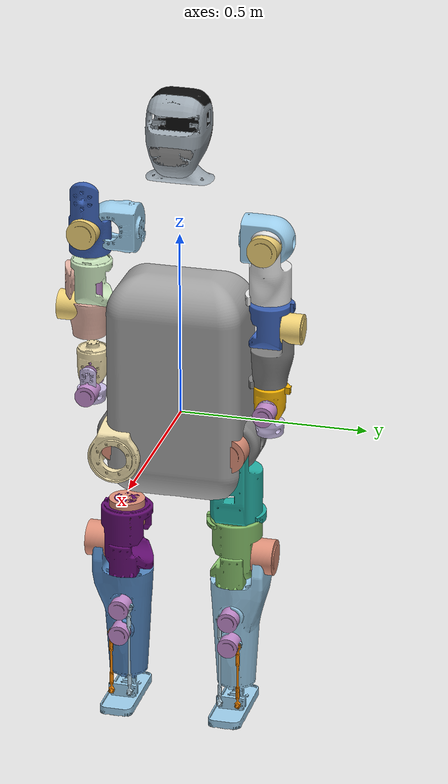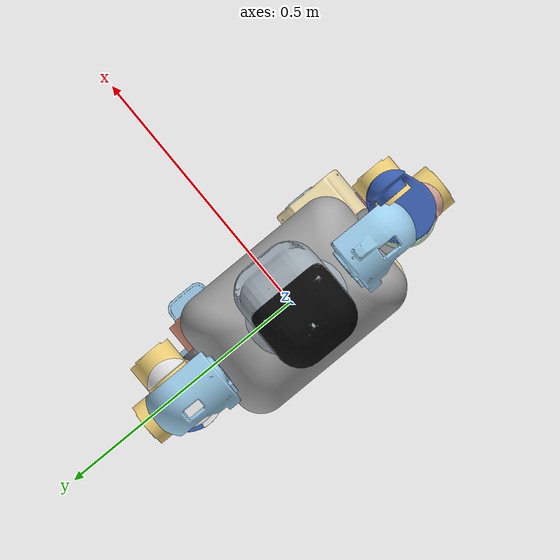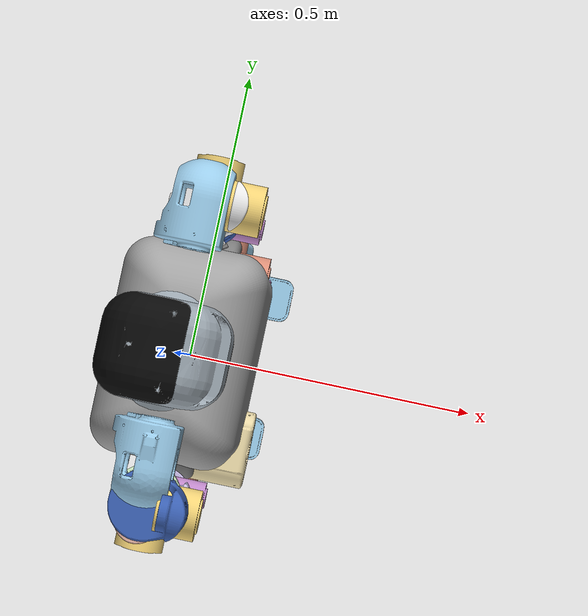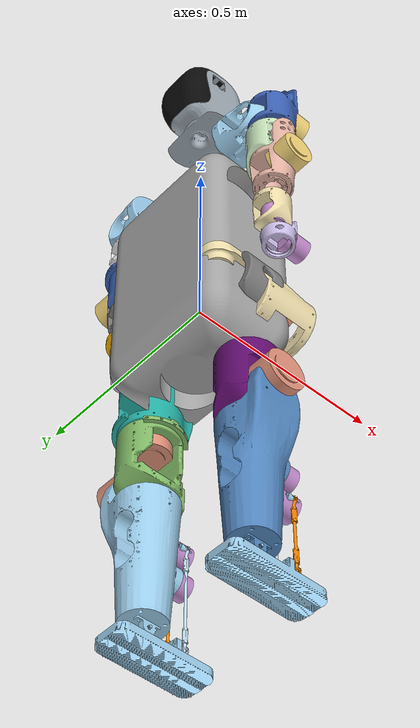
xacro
<?xml version="1.0"?>
<robot xmlns:xacro="http://ros.org/wiki/xacro" name="full_robot_description">

    <!-- Actuator properties macros -->
    <xacro:include filename="$(find full_robot_description)/urdf/macros/actuator_properties.xacro" />

    <!-- Body (base + torso) -->
    <xacro:include filename="$(find full_robot_description)/urdf/links/body_links.xacro" />
    <xacro:include filename="$(find full_robot_description)/urdf/joints/body_joints.xacro" />

    <!-- Left Arm -->
    <xacro:include filename="$(find full_robot_description)/urdf/links/left_arm_links.xacro" />
    <xacro:include filename="$(find full_robot_description)/urdf/joints/left_arm_joints.xacro" />

    <!-- Right Arm -->
    <xacro:include filename="$(find full_robot_description)/urdf/links/right_arm_links.xacro" />
    <xacro:include filename="$(find full_robot_description)/urdf/joints/right_arm_joints.xacro" />

    <!-- Left Foot -->
    <xacro:include filename="$(find full_robot_description)/urdf/links/left_foot_links.xacro" />
    <xacro:include filename="$(find full_robot_description)/urdf/joints/left_foot_joints.xacro" />

    <!-- Right Foot -->
    <xacro:include filename="$(find full_robot_description)/urdf/links/right_foot_links.xacro" />
    <xacro:include filename="$(find full_robot_description)/urdf/joints/right_foot_joints.xacro" />

    <!-- Temporarily disable inspire hands to speed up simulation and avoid issues with the hand meshes. Will be re-enabled once the hand meshes are optimized for simulation. -->
    <!-- Hands -->
    <!--xacro:include filename="$(find hand_description)/urdf/hands/inspire_hand_right.xacro" /-->

    <!-- Fix robot base to world frame -->
    <link name="world"/>
    <joint name="world_joint" type="fixed">
        <parent link="world"/>
        <child link="urdf_base"/>
    </joint>

</robot>

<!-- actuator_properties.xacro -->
<robot xmlns:xacro="http://www.ros.org/wiki/xacro">

  <!-- ==================== X4-36 (direct) ==================== -->
  <xacro:property name="X4_rated_effort"      value="10.5" />
  <xacro:property name="X4_moderate_effort"    value="12.075" />
  <xacro:property name="X4_peak_effort"        value="34" />
  <xacro:property name="X4_rated_velocity"     value="8.69" />
  <xacro:property name="X4_noload_velocity"    value="11.62" />
  <xacro:property name="X4_friction"           value="1.14" />
  <xacro:property name="X4_damping"            value="0.114" />
  <!-- Rotor inertia: 0.3 Kg·cm² = 3.0e-6 kg·m², gear ratio 36:1
       Reflected inertia = I_rotor × N² = 3.0e-6 × 1296 = 0.00389 kg·m² -->
  <xacro:property name="X4_rotor_inertia"      value="0.00389" />

  <!-- ==================== X6-60 (direct) ==================== -->
  <xacro:property name="X6_rated_effort"       value="20" />
  <xacro:property name="X6_moderate_effort"    value="23" />
  <xacro:property name="X6_peak_effort"        value="60" />
  <xacro:property name="X6_rated_velocity"     value="16.02" />
  <xacro:property name="X6_noload_velocity"    value="18.43" />
  <xacro:property name="X6_friction"           value="1.6" />
  <xacro:property name="X6_damping"            value="0.16" />
  <!-- Rotor inertia: 0.66 Kg·cm² = 6.6e-6 kg·m², gear ratio 19.612:1
       Reflected inertia = I_rotor × N² = 6.6e-6 × 384.6 = 0.00254 kg·m² -->
  <xacro:property name="X6_rotor_inertia"      value="0.00254" />

  <!-- ==================== X8-120 (direct) ==================== -->
  <xacro:property name="X8_rated_effort"       value="43" />
  <!-- X8 moderate set to 60% peak (72 Nm) for hip roll:
       cyclic gait duty ~30-50% keeps thermal average near rated,
       allowing sustained walking ~15-30 min without overheating -->
  <xacro:property name="X8_moderate_effort"    value="72" />
  <xacro:property name="X8_peak_effort"        value="120" />
  <xacro:property name="X8_rated_velocity"     value="13.3" />
  <xacro:property name="X8_noload_velocity"    value="16.54" />
  <xacro:property name="X8_friction"           value="3.21" />
  <xacro:property name="X8_damping"            value="0.321" />
  <!-- Rotor inertia: 1.5 Kg·cm² = 1.5e-5 kg·m², gear ratio 19.612:1
       Reflected inertia = I_rotor × N² = 1.5e-5 × 384.6 = 0.00577 kg·m² -->
  <xacro:property name="X8_rotor_inertia"      value="0.00577" />

  <!-- Ankle Pitch (both motors same direction, lever arm = 100mm)
       τ = 2 × (τ_motor / r_exc) × d_pitch = 2 × (τ / 0.025) × 0.1 -->
  <xacro:property name="ankle_pitch_rated_effort"     value="84" />
  <xacro:property name="ankle_pitch_moderate_effort"   value="96.6" />
  <xacro:property name="ankle_pitch_peak_effort"       value="272" />
  <xacro:property name="ankle_pitch_rated_velocity"    value="2.17" />

  <!-- Ankle Roll (motors opposite direction, lever arm = 30mm)
       τ = 2 × (τ_motor / r_exc) × d_roll = 2 × (τ / 0.025) × 0.03 -->
  <xacro:property name="ankle_roll_rated_effort"      value="25.2" />
  <xacro:property name="ankle_roll_moderate_effort"    value="28.98" />
  <xacro:property name="ankle_roll_peak_effort"        value="81.6" />
  <xacro:property name="ankle_roll_rated_velocity"     value="7.24" />

</robot>

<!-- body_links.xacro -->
<robot xmlns:xacro="http://www.ros.org/wiki/xacro">

  <!-- Body                                                              -->
  <link name="urdf_base">
    <inertial>
      <origin xyz="-0.0018527 0.000221695 -0.0329862" rpy="0 0 0"/>
      <mass value="5.778"/>
      <inertia ixx="0.0319377" ixy="1.97277e-06" ixz="3.91267e-05" iyy="0.0280522" iyz="-4.94971e-07" izz="0.0192445"/>
    </inertial>
    <visual>
      <origin xyz="-0.00371302 0.000225649 -0.0675455" rpy="0 0 -1.5708"/>
      <geometry>
        <mesh filename="package://full_robot_description/meshes/visual/urdf_base.stl"/>
      </geometry>
      <material name="urdf_base_material">
        <color rgba="0.231373 0.380392 0.705882 1"/>
      </material>
    </visual>
    <collision>
      <origin xyz="-0.00371302 0.000225649 -0.0675455" rpy="0 0 -1.5708"/>
      <geometry>
        <mesh filename="package://full_robot_description/meshes/collision/urdf_base.stl"/>
      </geometry>
    </collision>
  </link>

  <link name="urdf_simplified_torso">
    <inertial>
      <origin xyz="0.00243309 2.02127e-05 0.351351" rpy="0 0 0"/>
      <mass value="7.625"/>
      <inertia ixx="0.438279" ixy="-8.9594e-06" ixz="-0.00685147" iyy="0.409694" iyz="-2.41742e-05" izz="0.088742"/>
    </inertial>
    <visual>
      <origin xyz="3.1635e-07 0 0.672475" rpy="0 0 -1.5708"/>
      <geometry>
        <mesh filename="package://full_robot_description/meshes/visual/back_access.stl"/>
      </geometry>
      <material name="back_access_material">
        <color rgba="0.0392157 0.0392157 0.0392157 1"/>
      </material>
    </visual>
    <visual>
      <origin xyz="0 0 0.6725" rpy="0 0 -1.5708"/>
      <geometry>
        <mesh filename="package://full_robot_description/meshes/visual/head.stl"/>
      </geometry>
      <material name="head_material">
        <color rgba="0.623529 0.666667 0.701961 1"/>
      </material>
    </visual>
    <collision>
      <origin xyz="0 0 0.6725" rpy="0 0 -1.5708"/>
      <geometry>
        <mesh filename="package://full_robot_description/meshes/collision/head.stl"/>
      </geometry>
    </collision>
    <visual>
      <origin xyz="0 0 0.6725" rpy="0 0 -1.5708"/>
      <geometry>
        <mesh filename="package://full_robot_description/meshes/visual/intake.stl"/>
      </geometry>
      <material name="intake_material">
        <color rgba="0.6 0.6 0.6 1"/>
      </material>
    </visual>
    <collision>
      <origin xyz="0 0 0.6725" rpy="0 0 -1.5708"/>
      <geometry>
        <mesh filename="package://full_robot_description/meshes/collision/intake.stl"/>
      </geometry>
    </collision>
    <visual>
      <origin xyz="0 0 0" rpy="0 0 -1.5708"/>
      <geometry>
        <mesh filename="package://full_robot_description/meshes/visual/urdf_simplified_torso.stl"/>
      </geometry>
      <material name="urdf_simplified_torso_material">
        <color rgba="0.647059 0.647059 0.647059 1"/>
      </material>
    </visual>
    <collision>
      <origin xyz="0 0 0" rpy="0 0 -1.5708"/>
      <geometry>
        <mesh filename="package://full_robot_description/meshes/collision/urdf_simplified_torso.stl"/>
      </geometry>
    </collision>
  </link>

</robot>

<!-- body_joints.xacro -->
<robot xmlns:xacro="http://www.ros.org/wiki/xacro">

  <!-- Leg joint type — set fixed_legs:=true to lock leg joints          -->
  <xacro:arg name="fixed_legs" default="false"/>
  <xacro:property name="leg_joint_type" value="${'fixed' if '$(arg fixed_legs)' == 'true' else 'revolute'}"/>

  <!-- Waist joint type — independent from the arm and leg configuration -->
  <xacro:arg name="fixed_waist" default="true"/>
  <xacro:property name="waist_joint_type" value="${'fixed' if '$(arg fixed_waist)' == 'true' else 'revolute'}"/>

  <!-- Body                                                              -->
  <joint name="waist_yaw_joint_X8" type="${waist_joint_type}">
    <origin xyz="-0.00371302 0.000225649 0.0824545" rpy="0 0 0"/>
    <parent link="urdf_base"/>
    <child link="urdf_simplified_torso"/>
    <axis xyz="0 0 1"/>
    <limit effort="${X8_moderate_effort}" velocity="${X8_rated_velocity}" lower="-2.60054" upper="2.60054"/>
    <dynamics damping="${X8_damping}" friction="${X8_friction}"/>
  </joint>

</robot>

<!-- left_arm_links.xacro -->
<robot xmlns:xacro="http://www.ros.org/wiki/xacro">

  <!-- Left Arm                                                          -->
  <link name="urdf_l_shoulder_assembly">
    <inertial>
      <origin xyz="-0.00413417 0.0631966 -4.09838e-05" rpy="0 0 0"/>
      <mass value="1.246"/>
      <inertia ixx="0.00206364" ixy="-3.5558e-05" ixz="-1.48706e-06" iyy="0.00152408" iyz="-3.32984e-06" izz="0.00171114"/>
    </inertial>
    <visual>
      <origin xyz="0 -0.008 0" rpy="0 0 -1.5708"/>
      <geometry>
        <mesh filename="package://full_robot_description/meshes/visual/l_shoulder.stl"/>
      </geometry>
      <material name="l_shoulder_material">
        <color rgba="0.615686 0.811765 0.929412 1"/>
      </material>
    </visual>
    <collision>
      <origin xyz="0 -0.008 0" rpy="0 0 -1.5708"/>
      <geometry>
        <mesh filename="package://full_robot_description/meshes/collision/l_shoulder.stl"/>
      </geometry>
    </collision>
    <visual>
      <origin xyz="0.029 0.07 7.69541e-08" rpy="-1.57079 0 -1.5708"/>
      <geometry>
        <mesh filename="package://full_robot_description/meshes/visual/stator_x6_p20_60_unified.stl"/>
      </geometry>
      <material name="stator_x6_p20_60_unified_material">
        <color rgba="0.960784 0.835294 0.470588 1"/>
      </material>
    </visual>
  </link>

  <link name="urdf_l_upper_arm_assembly">
    <inertial>
      <origin xyz="-0.0354438 -0.000631042 -0.105506" rpy="0 0 0"/>
      <mass value="0.802"/>
      <inertia ixx="0.00190836" ixy="-1.03026e-05" ixz="-0.000475779" iyy="0.00206427" iyz="-2.68663e-05" izz="0.00104318"/>
    </inertial>
    <visual>
      <origin xyz="-0.017 0 0" rpy="0 0 -1.5708"/>
      <geometry>
        <mesh filename="package://full_robot_description/meshes/visual/urdf_l_upper_arm_simplified.stl"/>
      </geometry>
      <material name="urdf_l_upper_arm_simplified_material">
        <color rgba="0.917647 0.917647 0.917647 1"/>
      </material>
    </visual>
    <collision>
      <origin xyz="-0.017 0 0" rpy="0 0 -1.5708"/>
      <geometry>
        <mesh filename="package://full_robot_description/meshes/collision/urdf_l_upper_arm_simplified.stl"/>
      </geometry>
    </collision>
    <visual>
      <origin xyz="-0.046 5.58327e-07 -0.152" rpy="3.14159 0 3.14159"/>
      <geometry>
        <mesh filename="package://full_robot_description/meshes/visual/stator_x4_p36_36_unified.stl"/>
      </geometry>
      <material name="stator_x4_p36_36_unified_material">
        <color rgba="0.764706 0.545098 0.803922 1"/>
      </material>
    </visual>
  </link>

  <link name="urdf_l_elbow_assembly">
    <inertial>
      <origin xyz="-0.000321525 -0.00786654 -0.0707457" rpy="0 0 0"/>
      <mass value="1.142"/>
      <inertia ixx="0.00149508" ixy="1.15495e-05" ixz="1.86187e-05" iyy="0.00161681" iyz="-8.7759e-05" izz="0.00119839"/>
    </inertial>
    <visual>
      <origin xyz="8.44837e-08 0.023 -0.075" rpy="-1.5708 0 0"/>
      <geometry>
        <mesh filename="package://full_robot_description/meshes/visual/stator_x6_p20_60_unified.stl"/>
      </geometry>
      <material name="stator_x6_p20_60_unified_2_material">
        <color rgba="0.960784 0.835294 0.470588 1"/>
      </material>
    </visual>
    <visual>
      <origin xyz="0 0 0.008" rpy="0 0 0"/>
      <geometry>
        <mesh filename="package://full_robot_description/meshes/visual/urdf_l_elbow_simplified.stl"/>
      </geometry>
      <material name="urdf_l_elbow_simplified_material">
        <color rgba="0.231373 0.380392 0.705882 1"/>
      </material>
    </visual>
    <collision>
      <origin xyz="0 0 0.008" rpy="0 0 0"/>
      <geometry>
        <mesh filename="package://full_robot_description/meshes/collision/urdf_l_elbow_simplified.stl"/>
      </geometry>
    </collision>
  </link>

  <link name="urdf_l_upper_forearm_assembly">
    <inertial>
      <origin xyz="0.00203128 -0.0282785 -0.102443" rpy="0 0 0"/>
      <mass value="0.75"/>
      <inertia ixx="0.00185473" ixy="6.4337e-06" ixz="4.61364e-06" iyy="0.00160857" iyz="-0.000406067" izz="0.000790533"/>
    </inertial>
    <visual>
      <origin xyz="0 -0.012 0" rpy="0 0 -1.5708"/>
      <geometry>
        <mesh filename="package://full_robot_description/meshes/visual/urdf_l_upper_forearm_simplified.stl"/>
      </geometry>
      <material name="urdf_l_upper_forearm_simplified_material">
        <color rgba="0.498039 0.498039 0.498039 1"/>
      </material>
    </visual>
    <collision>
      <origin xyz="0 -0.012 0" rpy="0 0 -1.5708"/>
      <geometry>
        <mesh filename="package://full_robot_description/meshes/collision/urdf_l_upper_forearm_simplified.stl"/>
      </geometry>
    </collision>
    <visual>
      <origin xyz="4.00688e-07 -0.035 -0.151" rpy="-3.14159 0 -1.5708"/>
      <geometry>
        <mesh filename="package://full_robot_description/meshes/visual/stator_x4_p36_36_unified.stl"/>
      </geometry>
      <material name="stator_x4_p36_36_unified_2_material">
        <color rgba="0.764706 0.545098 0.803922 1"/>
      </material>
    </visual>
  </link>

  <link name="urdf_l_lower_forearm_assembly">
    <inertial>
      <origin xyz="-0.00486856 0.000580772 -0.0531095" rpy="0 0 0"/>
      <mass value="0.556"/>
      <inertia ixx="0.000515298" ixy="3.39246e-06" ixz="-1.98439e-05" iyy="0.00052029" iyz="-1.31438e-05" izz="0.000383432"/>
    </inertial>
    <visual>
      <origin xyz="0 0 0.012" rpy="0 0 1.57079"/>
      <geometry>
        <mesh filename="package://full_robot_description/meshes/visual/urdf_l_lower_forearm_simplified.stl"/>
      </geometry>
      <material name="urdf_l_lower_forearm_simplified_material">
        <color rgba="0.980392 0.713725 0.00392157 1"/>
      </material>
    </visual>
    <collision>
      <origin xyz="0 0 0.012" rpy="0 0 1.57079"/>
      <geometry>
        <mesh filename="package://full_robot_description/meshes/collision/urdf_l_lower_forearm_simplified.stl"/>
      </geometry>
    </collision>
    <visual>
      <origin xyz="0.0235 -2.35e-07 -0.0615" rpy="1.5708 0 1.57079"/>
      <geometry>
        <mesh filename="package://full_robot_description/meshes/visual/stator_x4_p36_36_unified.stl"/>
      </geometry>
      <material name="stator_x4_p36_36_unified_3_material">
        <color rgba="0.764706 0.545098 0.803922 1"/>
      </material>
    </visual>
  </link>

  <link name="urdf_l_wrist_assembly">
    <inertial>
      <origin xyz="-0.0290507 1.13212e-06 -0.121112" rpy="0 0 0"/>
      <mass value="0.638"/>
      <inertia ixx="0.00213609" ixy="-7.00887e-09" ixz="-3.51538e-05" iyy="0.00236601" iyz="-1.94664e-08" izz="0.000415509"/>
    </inertial>
    <visual>
      <origin xyz="-0.01 0 0" rpy="0 0 -1.5708"/>
      <geometry>
        <mesh filename="package://full_robot_description/meshes/visual/l_wrist.stl"/>
      </geometry>
      <material name="l_wrist_material">
        <color rgba="0.8 0.74902 0.913725 1"/>
      </material>
    </visual>
    <collision>
      <origin xyz="-0.01 0 0" rpy="0 0 -1.5708"/>
      <geometry>
        <mesh filename="package://full_robot_description/meshes/collision/l_wrist.stl"/>
      </geometry>
    </collision>
  </link>

</robot>

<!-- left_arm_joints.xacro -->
<robot xmlns:xacro="http://www.ros.org/wiki/xacro">

  <!-- Left Arm                                                          -->
  <joint name="left_shoulder_pitch_joint_X6" type="revolute">
    <origin xyz="0 0.1695 0.423977" rpy="0 0 0"/>
    <parent link="urdf_simplified_torso"/>
    <child link="urdf_l_shoulder_assembly"/>
    <axis xyz="0 1 0"/>
    <limit effort="${X6_moderate_effort}" velocity="${X6_rated_velocity}" lower="-3.14159" upper="1.5708"/>
    <dynamics damping="${X6_damping}" friction="${X6_friction}"/>
  </joint>

  <joint name="left_shoulder_roll_joint_X6" type="revolute">
    <origin xyz="0.046 0.07 1.22065e-07" rpy="0 0 0"/>
    <parent link="urdf_l_shoulder_assembly"/>
    <child link="urdf_l_upper_arm_assembly"/>
    <axis xyz="1 0 0"/>
    <limit effort="${X6_moderate_effort}" velocity="${X6_rated_velocity}" lower="0" upper="3.14159"/>
    <dynamics damping="${X6_damping}" friction="${X6_friction}"/>
  </joint>

  <joint name="left_shoulder_yaw_joint_X4" type="revolute">
    <origin xyz="-0.046 6.06079e-07 -0.165" rpy="0 0 0"/>
    <parent link="urdf_l_upper_arm_assembly"/>
    <child link="urdf_l_elbow_assembly"/>
    <axis xyz="0 0 1"/>
    <limit effort="${X4_moderate_effort}" velocity="${X4_rated_velocity}" lower="-2.35619" upper="2.35619"/>
    <dynamics damping="${X4_damping}" friction="${X4_friction}"/>
  </joint>

  <joint name="left_elbow_pitch_joint_X6" type="revolute">
    <origin xyz="1.28562e-07 0.035 -0.075" rpy="0 0 0"/>
    <parent link="urdf_l_elbow_assembly"/>
    <child link="urdf_l_upper_forearm_assembly"/>
    <axis xyz="0 1 0"/>
    <limit effort="${X6_moderate_effort}" velocity="${X6_rated_velocity}" lower="-1.5708" upper="1.5708"/>
    <dynamics damping="${X6_damping}" friction="${X6_friction}"/>
  </joint>

  <joint name="left_wrist_yaw_joint_X4" type="revolute">
    <origin xyz="4.32531e-07 -0.035 -0.163" rpy="0 0 0"/>
    <parent link="urdf_l_upper_forearm_assembly"/>
    <child link="urdf_l_lower_forearm_assembly"/>
    <axis xyz="0 0 1"/>
    <limit effort="${X4_moderate_effort}" velocity="${X4_rated_velocity}" lower="-2.35619" upper="2.35619"/>
    <dynamics damping="${X4_damping}" friction="${X4_friction}"/>
  </joint>

  <joint name="left_wrist_roll_joint_X4" type="revolute">
    <origin xyz="0.033 -3.3e-07 -0.0615" rpy="0 0 0"/>
    <parent link="urdf_l_lower_forearm_assembly"/>
    <child link="urdf_l_wrist_assembly"/>
    <axis xyz="1 0 0"/>
    <limit effort="${X4_moderate_effort}" velocity="${X4_rated_velocity}" lower="-1.5708" upper="1.5708"/>
    <dynamics damping="${X4_damping}" friction="${X4_friction}"/>
  </joint>

</robot>

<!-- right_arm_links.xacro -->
<robot xmlns:xacro="http://www.ros.org/wiki/xacro">

  <!-- Right Arm                                                         -->
  <link name="urdf_r_shoulder_assembly">
    <inertial>
      <origin xyz="-0.0041383 -0.0631521 -4.41523e-05" rpy="0 0 0"/>
      <mass value="1.246"/>
      <inertia ixx="0.00207139" ixy="3.51054e-05" ixz="-1.60928e-06" iyy="0.00153235" iyz="3.59139e-06" izz="0.00170662"/>
    </inertial>
    <visual>
      <origin xyz="0.029 -0.07 7.69541e-08" rpy="-1.57079 0 -1.5708"/>
      <geometry>
        <mesh filename="package://full_robot_description/meshes/visual/stator_x6_p20_60_unified.stl"/>
      </geometry>
      <material name="stator_x6_p20_60_unified_3_material">
        <color rgba="0.960784 0.835294 0.470588 1"/>
      </material>
    </visual>
    <visual>
      <origin xyz="0 0.008 0" rpy="0 0 -1.5708"/>
      <geometry>
        <mesh filename="package://full_robot_description/meshes/visual/r_shoulder.stl"/>
      </geometry>
      <material name="r_shoulder_material">
        <color rgba="0.615686 0.811765 0.929412 1"/>
      </material>
    </visual>
    <collision>
      <origin xyz="0 0.008 0" rpy="0 0 -1.5708"/>
      <geometry>
        <mesh filename="package://full_robot_description/meshes/collision/r_shoulder.stl"/>
      </geometry>
    </collision>
  </link>

  <link name="urdf_r_upper_arm_assembly">
    <inertial>
      <origin xyz="-0.0347331 3.91738e-07 -0.104084" rpy="0 0 0"/>
      <mass value="0.802"/>
      <inertia ixx="0.00188605" ixy="2.8797e-09" ixz="-0.000468447" iyy="0.00204755" iyz="4.48483e-09" izz="0.0010158"/>
    </inertial>
    <visual>
      <origin xyz="-0.046 5.58327e-07 -0.152" rpy="3.14159 0 -1.5708"/>
      <geometry>
        <mesh filename="package://full_robot_description/meshes/visual/stator_x4_p36_36_unified.stl"/>
      </geometry>
      <material name="stator_x4_p36_36_unified_4_material">
        <color rgba="0.764706 0.545098 0.803922 1"/>
      </material>
    </visual>
    <visual>
      <origin xyz="-0.017 0 0" rpy="0 0 -1.5708"/>
      <geometry>
        <mesh filename="package://full_robot_description/meshes/visual/r_upper_arm.stl"/>
      </geometry>
      <material name="r_upper_arm_material">
        <color rgba="0.231373 0.380392 0.705882 1"/>
      </material>
    </visual>
    <collision>
      <origin xyz="-0.017 0 0" rpy="0 0 -1.5708"/>
      <geometry>
        <mesh filename="package://full_robot_description/meshes/collision/r_upper_arm.stl"/>
      </geometry>
    </collision>
  </link>

  <link name="urdf_r_elbow_assembly">
    <inertial>
      <origin xyz="3.41443e-05 0.00820387 -0.0609681" rpy="0 0 0"/>
      <mass value="1.142"/>
      <inertia ixx="0.00147584" ixy="3.32629e-07" ixz="-2.50172e-06" iyy="0.0016096" iyz="6.63447e-05" izz="0.0011739"/>
    </inertial>
    <visual>
      <origin xyz="0 0 0.018" rpy="0 0 -1.5708"/>
      <geometry>
        <mesh filename="package://full_robot_description/meshes/visual/r_elbow.stl"/>
      </geometry>
      <material name="r_elbow_material">
        <color rgba="0.796078 0.905882 0.745098 1"/>
      </material>
    </visual>
    <collision>
      <origin xyz="0 0 0.018" rpy="0 0 -1.5708"/>
      <geometry>
        <mesh filename="package://full_robot_description/meshes/collision/r_elbow.stl"/>
      </geometry>
    </collision>
    <visual>
      <origin xyz="0 -0.023 -0.065" rpy="0 -1.57079 1.5708"/>
      <geometry>
        <mesh filename="package://full_robot_description/meshes/visual/stator_x6_p20_60_unified.stl"/>
      </geometry>
      <material name="stator_x6_p20_60_unified_4_material">
        <color rgba="0.960784 0.835294 0.470588 1"/>
      </material>
    </visual>
  </link>

  <link name="urdf_r_upper_forearm_assembly">
    <inertial>
      <origin xyz="0.00241694 0.0323607 -0.100729" rpy="0 0 0"/>
      <mass value="0.75"/>
      <inertia ixx="0.00183686" ixy="-1.38028e-05" ixz="1.92186e-05" iyy="0.00159279" iyz="0.000390053" izz="0.000771484"/>
    </inertial>
    <visual>
      <origin xyz="9.55346e-07 0.04 -0.151" rpy="-3.14159 0 -1.5708"/>
      <geometry>
        <mesh filename="package://full_robot_description/meshes/visual/stator_x4_p36_36_unified.stl"/>
      </geometry>
      <material name="stator_x4_p36_36_unified_5_material">
        <color rgba="0.764706 0.545098 0.803922 1"/>
      </material>
    </visual>
    <visual>
      <origin xyz="0 0.017 0" rpy="0 0 -1.5708"/>
      <geometry>
        <mesh filename="package://full_robot_description/meshes/visual/r_upper_forearm.stl"/>
      </geometry>
      <material name="r_upper_forearm_material">
        <color rgba="0.890196 0.698039 0.639216 1"/>
      </material>
    </visual>
    <collision>
      <origin xyz="0 0.017 0" rpy="0 0 -1.5708"/>
      <geometry>
        <mesh filename="package://full_robot_description/meshes/collision/r_upper_forearm.stl"/>
      </geometry>
    </collision>
  </link>

  <link name="urdf_r_lower_forearm_assembly">
    <inertial>
      <origin xyz="-0.00467382 2.05481e-08 -0.0483532" rpy="0 0 0"/>
      <mass value="0.556"/>
      <inertia ixx="0.000508069" ixy="-1.41e-10" ixz="-3.21724e-05" iyy="0.000519709" iyz="3.88e-10" izz="0.000375537"/>
    </inertial>
    <visual>
      <origin xyz="0 0 0.017" rpy="0 0 -1.5708"/>
      <geometry>
        <mesh filename="package://full_robot_description/meshes/visual/r_lower_forearm.stl"/>
      </geometry>
      <material name="r_lower_forearm_material">
        <color rgba="0.941176 0.87451 0.678431 1"/>
      </material>
    </visual>
    <collision>
      <origin xyz="0 0 0.017" rpy="0 0 -1.5708"/>
      <geometry>
        <mesh filename="package://full_robot_description/meshes/collision/r_lower_forearm.stl"/>
      </geometry>
    </collision>
    <visual>
      <origin xyz="0.023 0 -0.0565" rpy="1.57079 0 1.57079"/>
      <geometry>
        <mesh filename="package://full_robot_description/meshes/visual/stator_x4_p36_36_unified.stl"/>
      </geometry>
      <material name="stator_x4_p36_36_unified_6_material">
        <color rgba="0.764706 0.545098 0.803922 1"/>
      </material>
    </visual>
  </link>

  <link name="urdf_r_wrist_assembly">
    <inertial>
      <origin xyz="-0.0285102 -1.01672e-06 -0.115254" rpy="0 0 0"/>
      <mass value="0.69"/>
      <inertia ixx="0.00248005" ixy="1.0712e-08" ixz="-7.96759e-05" iyy="0.00272432" iyz="3.9857e-08" izz="0.00046834"/>
    </inertial>
    <visual>
      <origin xyz="-0.01 0 0" rpy="0 0 -1.5708"/>
      <geometry>
        <mesh filename="package://full_robot_description/meshes/visual/r_wrist.stl"/>
      </geometry>
      <material name="r_wrist_material">
        <color rgba="0.8 0.74902 0.913725 1"/>
      </material>
    </visual>
    <collision>
      <origin xyz="-0.01 0 0" rpy="0 0 -1.5708"/>
      <geometry>
        <mesh filename="package://full_robot_description/meshes/collision/r_wrist.stl"/>
      </geometry>
    </collision>
  </link>

</robot>

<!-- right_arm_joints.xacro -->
<robot xmlns:xacro="http://www.ros.org/wiki/xacro">

  <!-- Right Arm                                                         -->
  <joint name="right_shoulder_pitch_joint_X6" type="revolute">
    <origin xyz="0 -0.1695 0.423977" rpy="0 0 0"/>
    <parent link="urdf_simplified_torso"/>
    <child link="urdf_r_shoulder_assembly"/>
    <axis xyz="0 1 0"/>
    <limit effort="${X6_moderate_effort}" velocity="${X6_rated_velocity}" lower="-3.14159" upper="1.5708"/>
    <dynamics damping="${X6_damping}" friction="${X6_friction}"/>
  </joint>

  <joint name="right_shoulder_roll_joint_X6" type="revolute">
    <origin xyz="0.046 -0.07 1.22065e-07" rpy="0 0 0"/>
    <parent link="urdf_r_shoulder_assembly"/>
    <child link="urdf_r_upper_arm_assembly"/>
    <axis xyz="1 0 0"/>
    <limit effort="${X6_moderate_effort}" velocity="${X6_rated_velocity}" lower="-3.14159" upper="0"/>
    <dynamics damping="${X6_damping}" friction="${X6_friction}"/>
  </joint>

  <joint name="right_shoulder_yaw_joint_X4" type="revolute">
    <origin xyz="-0.046 6.24445e-07 -0.17" rpy="0 0 0"/>
    <parent link="urdf_r_upper_arm_assembly"/>
    <child link="urdf_r_elbow_assembly"/>
    <axis xyz="0 0 1"/>
    <limit effort="${X4_moderate_effort}" velocity="${X4_rated_velocity}" lower="-2.35619" upper="2.35619"/>
    <dynamics damping="${X4_damping}" friction="${X4_friction}"/>
  </joint>

  <joint name="right_elbow_pitch_joint_X6" type="revolute">
    <origin xyz="0 -0.04 -0.065" rpy="0 0 0"/>
    <parent link="urdf_r_elbow_assembly"/>
    <child link="urdf_r_upper_forearm_assembly"/>
    <axis xyz="0 1 0"/>
    <limit effort="${X6_moderate_effort}" velocity="${X6_rated_velocity}" lower="-1.5708" upper="1.5708"/>
    <dynamics damping="${X6_damping}" friction="${X6_friction}"/>
  </joint>

  <joint name="right_wrist_yaw_joint_X4" type="revolute">
    <origin xyz="1.0629e-06 0.04 -0.168" rpy="0 0 0"/>
    <parent link="urdf_r_upper_forearm_assembly"/>
    <child link="urdf_r_lower_forearm_assembly"/>
    <axis xyz="0 0 1"/>
    <limit effort="${X4_moderate_effort}" velocity="${X4_rated_velocity}" lower="-2.35619" upper="2.35619"/>
    <dynamics damping="${X4_damping}" friction="${X4_friction}"/>
  </joint>

  <joint name="right_wrist_roll_joint_X4" type="revolute">
    <origin xyz="0.033 0 -0.0565" rpy="0 0 0"/>
    <parent link="urdf_r_lower_forearm_assembly"/>
    <child link="urdf_r_wrist_assembly"/>
    <axis xyz="1 0 0"/>
    <limit effort="${X4_moderate_effort}" velocity="${X4_rated_velocity}" lower="-1.5708" upper="1.5708"/>
    <dynamics damping="${X4_damping}" friction="${X4_friction}"/>
  </joint>

</robot>

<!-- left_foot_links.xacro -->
<robot xmlns:xacro="http://www.ros.org/wiki/xacro">

  <!-- Left Foot                                                         -->
  <link name="urdf_hip_assembly">
    <inertial>
      <origin xyz="-0.00383245 0.060314 -3.46061e-05" rpy="0 0 0"/>
      <mass value="1.829"/>
      <inertia ixx="0.00318755" ixy="-1.14857e-05" ixz="2.56657e-07" iyy="0.00257831" iyz="-4.04073e-06" izz="0.00267314"/>
    </inertial>
    <visual>
      <origin xyz="0 -0.008 0" rpy="1.5708 0 0"/>
      <geometry>
        <mesh filename="package://full_robot_description/meshes/visual/hip.stl"/>
      </geometry>
      <material name="hip_material">
        <color rgba="0.498039 0.498039 0.498039 1"/>
      </material>
    </visual>
    <collision>
      <origin xyz="0 -0.008 0" rpy="1.5708 0 0"/>
      <geometry>
        <mesh filename="package://full_robot_description/meshes/collision/hip.stl"/>
      </geometry>
    </collision>
    <visual>
      <origin xyz="0.033 0.062 0" rpy="0 -1.57079 3.14159"/>
      <geometry>
        <mesh filename="package://full_robot_description/meshes/visual/stator_x8_p20_120_unified.stl"/>
      </geometry>
      <material name="stator_x8_p20_120_unified_material">
        <color rgba="0.882353 0.572549 0.478431 1"/>
      </material>
    </visual>
  </link>

  <link name="urdf_l_upper_femur_assembly">
    <inertial>
      <origin xyz="-0.0457209 0.000596674 -0.147978" rpy="0 0 0"/>
      <mass value="1.929"/>
      <inertia ixx="0.00524649" ixy="8.52938e-06" ixz="-0.000959197" iyy="0.00568959" iyz="-3.13092e-05" izz="0.00344116"/>
    </inertial>
    <visual>
      <origin xyz="-0.02 0 0" rpy="1.5708 0 -1.5708"/>
      <geometry>
        <mesh filename="package://full_robot_description/meshes/visual/l_upper_femur.stl"/>
      </geometry>
      <material name="l_upper_femur_material">
        <color rgba="0.141176 0.694118 0.65098 1"/>
      </material>
    </visual>
    <collision>
      <origin xyz="-0.02 0 0" rpy="1.5708 0 -1.5708"/>
      <geometry>
        <mesh filename="package://full_robot_description/meshes/collision/l_upper_femur.stl"/>
      </geometry>
    </collision>
    <visual>
      <origin xyz="-0.053 7.34641e-07 -0.2" rpy="3.14159 0 -1.5708"/>
      <geometry>
        <mesh filename="package://full_robot_description/meshes/visual/stator_x8_p20_120_unified.stl"/>
      </geometry>
      <material name="stator_x8_p20_120_unified_2_material">
        <color rgba="0.882353 0.572549 0.478431 1"/>
      </material>
    </visual>
  </link>

  <link name="urdf_lower_femur_left_assembly">
    <inertial>
      <origin xyz="0.00101248 -0.00366912 -0.102035" rpy="0 0 0"/>
      <mass value="1.86"/>
      <inertia ixx="0.00406281" ixy="-3.59866e-06" ixz="0.000103949" iyy="0.00453339" iyz="-0.000171674" izz="0.0027478"/>
    </inertial>
    <visual>
      <origin xyz="0 0 0.017" rpy="0 0 -1.5708"/>
      <geometry>
        <mesh filename="package://full_robot_description/meshes/visual/lower_femur_left.stl"/>
      </geometry>
      <material name="lower_femur_left_material">
        <color rgba="0.513725 0.737255 0.407843 1"/>
      </material>
    </visual>
    <collision>
      <origin xyz="0 0 0.017" rpy="0 0 -1.5708"/>
      <geometry>
        <mesh filename="package://full_robot_description/meshes/collision/lower_femur_left.stl"/>
      </geometry>
    </collision>
    <visual>
      <origin xyz="0 0.033 -0.111" rpy="-3.14159 -1.57079 1.5708"/>
      <geometry>
        <mesh filename="package://full_robot_description/meshes/visual/stator_x8_p20_120_unified.stl"/>
      </geometry>
      <material name="stator_x8_p20_120_unified_3_material">
        <color rgba="0.882353 0.572549 0.478431 1"/>
      </material>
    </visual>
  </link>

  <link name="urdf_l_tibia_assembly">
    <inertial>
      <origin xyz="0.0159744 -0.0490442 -0.201264" rpy="0 0 0"/>
      <mass value="2.25712"/>
      <inertia ixx="0.0211211" ixy="0.000249133" ixz="0.00166772" iyy="0.0217222" iyz="-0.00197554" izz="0.00496937"/>
    </inertial>
    <visual>
      <origin xyz="0.042999 -0.055 -0.16" rpy="3.14159 -1.57079 0"/>
      <geometry>
        <mesh filename="package://full_robot_description/meshes/visual/stator_x4_p36_36_unified.stl"/>
      </geometry>
      <material name="stator_x4_p36_36_unified_7_material">
        <color rgba="0.764706 0.545098 0.803922 1"/>
      </material>
    </visual>
    <visual>
      <origin xyz="0.0429985 -0.055 -0.235" rpy="-3.14159 1.57079 -3.14159"/>
      <geometry>
        <mesh filename="package://full_robot_description/meshes/visual/stator_x4_p36_36_unified.stl"/>
      </geometry>
      <material name="stator_x4_p36_36_unified_8_material">
        <color rgba="0.764706 0.545098 0.803922 1"/>
      </material>
    </visual>
    <visual>
      <origin xyz="0.0826388 -0.08 -0.285149" rpy="0 0 -1.5708"/>
      <geometry>
        <mesh filename="package://full_robot_description/meshes/visual/tija_cs_250_296mm_urdf.stl"/>
      </geometry>
      <material name="tija_cs_250_296mm_urdf_material">
        <color rgba="0.768627 0.886275 0.952941 1"/>
      </material>
    </visual>
    <collision>
      <origin xyz="0.0826388 -0.08 -0.285149" rpy="0 0 -1.5708"/>
      <geometry>
        <mesh filename="package://full_robot_description/meshes/collision/tija_cs_250_296mm_urdf.stl"/>
      </geometry>
    </collision>
    <visual>
      <origin xyz="0.0429985 -0.055 -0.235" rpy="3.14158 0 -1.5708"/>
      <geometry>
        <mesh filename="package://full_robot_description/meshes/visual/urdf_spacer_x4.stl"/>
      </geometry>
      <material name="urdf_spacer_x4_material">
        <color rgba="0.615686 0.811765 0.929412 1"/>
      </material>
    </visual>
    <visual>
      <origin xyz="0 -0.022 0" rpy="1.5708 0 0"/>
      <geometry>
        <mesh filename="package://full_robot_description/meshes/visual/urdf_l_tibia_assembly.stl"/>
      </geometry>
      <material name="urdf_l_tibia_assembly_material">
        <color rgba="0.615686 0.811765 0.929412 1"/>
      </material>
    </visual>
    <collision>
      <origin xyz="0 -0.022 0" rpy="1.5708 0 0"/>
      <geometry>
        <mesh filename="package://full_robot_description/meshes/collision/urdf_l_tibia_assembly.stl"/>
      </geometry>
    </collision>
    <visual>
      <origin xyz="0.042999 -0.055 -0.16" rpy="0 0 1.5708"/>
      <geometry>
        <mesh filename="package://full_robot_description/meshes/visual/urdf_spacer_x4.stl"/>
      </geometry>
      <material name="urdf_spacer_x4_2_material">
        <color rgba="0.615686 0.811765 0.929412 1"/>
      </material>
    </visual>
    <visual>
      <origin xyz="0.0826386 -0.03 -0.322626" rpy="0 0 -1.5708"/>
      <geometry>
        <mesh filename="package://full_robot_description/meshes/visual/tija_cs_175_250mm_urdf.stl"/>
      </geometry>
      <material name="tija_cs_175_250mm_urdf_material">
        <color rgba="0.972549 0.529412 0.00392157 1"/>
      </material>
    </visual>
    <collision>
      <origin xyz="0.0826386 -0.03 -0.322626" rpy="0 0 -1.5708"/>
      <geometry>
        <mesh filename="package://full_robot_description/meshes/collision/tija_cs_175_250mm_urdf.stl"/>
      </geometry>
    </collision>
  </link>

  <link name="urdf_ankle_assembly">
    <inertial>
      <origin xyz="-7.93545e-08 -0.004 -0.0125426" rpy="0 0 0"/>
      <mass value="0.0818219"/>
      <inertia ixx="1.69449e-05" ixy="-1.2828e-26" ixz="-2.78664e-11" iyy="2.15245e-05" iyz="4.88636e-26" izz="1.25404e-05"/>
    </inertial>
    <visual>
      <origin xyz="0 -0.004 0" rpy="1.5708 0 0"/>
      <geometry>
        <mesh filename="package://full_robot_description/meshes/visual/urdf_ankle_assembly.stl"/>
      </geometry>
      <material name="urdf_ankle_assembly_material">
        <color rgba="0.615686 0.811765 0.929412 1"/>
      </material>
    </visual>
    <collision>
      <origin xyz="0 -0.004 0" rpy="1.5708 0 0"/>
      <geometry>
        <mesh filename="package://full_robot_description/meshes/collision/urdf_ankle_assembly.stl"/>
      </geometry>
    </collision>
  </link>

  <link name="urdf_foot_assembly">
    <inertial>
      <origin xyz="0.0435482 1.30196e-07 -0.0178421" rpy="0 0 0"/>
      <mass value="0.309"/>
      <inertia ixx="0.000230586" ixy="7.56601e-11" ixz="-9.20996e-06" iyy="0.00121875" iyz="-1.21568e-09" izz="0.00138491"/>
    </inertial>
    <visual>
      <origin xyz="0 0 0" rpy="-1.5708 0 -1.5708"/>
      <geometry>
        <mesh filename="package://full_robot_description/meshes/visual/urdf_foot_assembly.stl"/>
      </geometry>
      <material name="urdf_foot_assembly_material">
        <color rgba="0.615686 0.811765 0.929412 1"/>
      </material>
    </visual>
    <collision>
      <origin xyz="0 0 0" rpy="-1.5708 0 -1.5708"/>
      <geometry>
        <mesh filename="package://full_robot_description/meshes/collision/urdf_foot_assembly.stl"/>
      </geometry>
    </collision>
  </link>

</robot>

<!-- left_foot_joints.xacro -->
<robot xmlns:xacro="http://www.ros.org/wiki/xacro">

  <!-- Left Foot                                                         -->
  <joint name="left_hip_pitch_joint_X8" type="${leg_joint_type}">
    <origin xyz="-0.00371302 0.0882256 -0.0675455" rpy="0 0 0"/>
    <parent link="urdf_base"/>
    <child link="urdf_hip_assembly"/>
    <axis xyz="0 1 0"/>
    <limit effort="${X8_moderate_effort}" velocity="${X8_rated_velocity}" lower="-2.61799" upper="2.61799"/>
    <dynamics damping="${X8_damping}" friction="${X8_friction}"/>
  </joint>

  <joint name="left_hip_roll_joint_X8" type="${leg_joint_type}">
    <origin xyz="0.053 0.062 0" rpy="0 0 0"/>
    <parent link="urdf_hip_assembly"/>
    <child link="urdf_l_upper_femur_assembly"/>
    <axis xyz="1 0 0"/>
    <limit effort="${X8_moderate_effort}" velocity="${X8_rated_velocity}" lower="-0.383972" upper="3.22886"/>
    <dynamics damping="${X8_damping}" friction="${X8_friction}"/>
  </joint>

  <joint name="left_hip_yaw_joint_X8" type="${leg_joint_type}">
    <origin xyz="-0.053 7.97086e-07 -0.217" rpy="0 0 0"/>
    <parent link="urdf_l_upper_femur_assembly"/>
    <child link="urdf_lower_femur_left_assembly"/>
    <axis xyz="0 0 1"/>
    <limit effort="${X8_moderate_effort}" velocity="${X8_rated_velocity}" lower="-2.75762" upper="2.75762"/>
    <dynamics damping="${X8_damping}" friction="${X8_friction}"/>
  </joint>

  <joint name="left_knee_joint_X8" type="${leg_joint_type}">
    <origin xyz="0 0.055 -0.111" rpy="0 0 0"/>
    <parent link="urdf_lower_femur_left_assembly"/>
    <child link="urdf_l_tibia_assembly"/>
    <axis xyz="0 1 0"/>
    <limit effort="${X8_moderate_effort}" velocity="${X8_rated_velocity}" lower="0" upper="1.52716"/>
    <dynamics damping="${X8_damping}" friction="${X8_friction}"/>
  </joint>

  <joint name="left_ankle_pitch_joint_X4" type="${leg_joint_type}">
    <origin xyz="-2.48327e-06 -0.051 -0.3925" rpy="0 0 0"/>
    <parent link="urdf_l_tibia_assembly"/>
    <child link="urdf_ankle_assembly"/>
    <axis xyz="0 1 0"/>
    <limit effort="${X4_moderate_effort}" velocity="${X4_rated_velocity}" lower="-0.785398" upper="0.785398"/>
    <dynamics damping="${X4_damping}" friction="${X4_friction}"/>
  </joint>

  <joint name="left_ankle_roll_joint_X4" type="${leg_joint_type}">
    <origin xyz="-0.0120002 -0.004 -0.0279999" rpy="0 0 0"/>
    <parent link="urdf_ankle_assembly"/>
    <child link="urdf_foot_assembly"/>
    <axis xyz="1 0 0"/>
    <limit effort="${X4_moderate_effort}" velocity="${X4_rated_velocity}" lower="-0.785398" upper="0.785398"/>
    <dynamics damping="${X4_damping}" friction="${X4_friction}"/>
  </joint>

</robot>

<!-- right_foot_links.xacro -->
<robot xmlns:xacro="http://www.ros.org/wiki/xacro">

  <!-- Right Foot                                                        -->
  <link name="urdf_hip_assembly_2">
    <inertial>
      <origin xyz="-0.00383245 -0.060314 3.46061e-05" rpy="0 0 0"/>
      <mass value="1.829"/>
      <inertia ixx="0.00318755" ixy="1.14857e-05" ixz="-2.56657e-07" iyy="0.00257831" iyz="-4.04073e-06" izz="0.00267314"/>
    </inertial>
    <visual>
      <origin xyz="0 0.008 0" rpy="-1.5708 0 0"/>
      <geometry>
        <mesh filename="package://full_robot_description/meshes/visual/hip.stl"/>
      </geometry>
      <material name="hip_2_material">
        <color rgba="0.498039 0.498039 0.498039 1"/>
      </material>
    </visual>
    <collision>
      <origin xyz="0 0.008 0" rpy="-1.5708 0 0"/>
      <geometry>
        <mesh filename="package://full_robot_description/meshes/collision/hip.stl"/>
      </geometry>
    </collision>
    <visual>
      <origin xyz="0.033 -0.062 0" rpy="-3.14159 1.57079 3.14159"/>
      <geometry>
        <mesh filename="package://full_robot_description/meshes/visual/stator_x8_p20_120_unified.stl"/>
      </geometry>
      <material name="stator_x8_p20_120_unified_4_material">
        <color rgba="0.882353 0.572549 0.478431 1"/>
      </material>
    </visual>
  </link>

  <link name="urdf_r_upper_femur_assembly">
    <inertial>
      <origin xyz="-0.0457109 -0.000406568 -0.147969" rpy="0 0 0"/>
      <mass value="1.912"/>
      <inertia ixx="0.00512969" ixy="-1.23241e-06" ixz="-0.000930002" iyy="0.00557257" iyz="5.18678e-05" izz="0.00336728"/>
    </inertial>
    <visual>
      <origin xyz="-0.02 0 0" rpy="1.5708 0 -1.5708"/>
      <geometry>
        <mesh filename="package://full_robot_description/meshes/visual/r_upper_femur.stl"/>
      </geometry>
      <material name="r_upper_femur_material">
        <color rgba="0.941176 0.87451 0.678431 1"/>
      </material>
    </visual>
    <collision>
      <origin xyz="-0.02 0 0" rpy="1.5708 0 -1.5708"/>
      <geometry>
        <mesh filename="package://full_robot_description/meshes/collision/r_upper_femur.stl"/>
      </geometry>
    </collision>
    <visual>
      <origin xyz="-0.053 -7.34641e-07 -0.2" rpy="3.14159 0 -1.5708"/>
      <geometry>
        <mesh filename="package://full_robot_description/meshes/visual/stator_x8_p20_120_unified.stl"/>
      </geometry>
      <material name="stator_x8_p20_120_unified_5_material">
        <color rgba="0.882353 0.572549 0.478431 1"/>
      </material>
    </visual>
  </link>

  <link name="urdf_lower_femur_right_assembly">
    <inertial>
      <origin xyz="0.00100581 0.00352358 -0.102276" rpy="0 0 0"/>
      <mass value="1.854"/>
      <inertia ixx="0.00400045" ixy="3.83284e-06" ixz="0.000104321" iyy="0.00448217" iyz="0.000196389" izz="0.00272049"/>
    </inertial>
    <visual>
      <origin xyz="0 0 0.017" rpy="0 0 1.57079"/>
      <geometry>
        <mesh filename="package://full_robot_description/meshes/visual/lower_femur_right.stl"/>
      </geometry>
      <material name="lower_femur_right_material">
        <color rgba="0.380392 0.0470588 0.435294 1"/>
      </material>
    </visual>
    <collision>
      <origin xyz="0 0 0.017" rpy="0 0 1.57079"/>
      <geometry>
        <mesh filename="package://full_robot_description/meshes/collision/lower_femur_right.stl"/>
      </geometry>
    </collision>
    <visual>
      <origin xyz="0 -0.033 -0.111" rpy="0 -1.57079 1.5708"/>
      <geometry>
        <mesh filename="package://full_robot_description/meshes/visual/stator_x8_p20_120_unified.stl"/>
      </geometry>
      <material name="stator_x8_p20_120_unified_6_material">
        <color rgba="0.882353 0.572549 0.478431 1"/>
      </material>
    </visual>
  </link>

  <link name="urdf_r_tibia_assembly">
    <inertial>
      <origin xyz="0.0159813 0.0490467 -0.201271" rpy="0 0 0"/>
      <mass value="2.25612"/>
      <inertia ixx="0.0211075" ixy="-0.000249025" ixz="0.00166753" iyy="0.021709" iyz="0.00197388" izz="0.00496668"/>
    </inertial>
    <visual>
      <origin xyz="0.0429994 0.055 -0.16" rpy="3.14159 0 -1.5708"/>
      <geometry>
        <mesh filename="package://full_robot_description/meshes/visual/urdf_spacer_x4.stl"/>
      </geometry>
      <material name="urdf_spacer_x4_3_material">
        <color rgba="0.615686 0.811765 0.929412 1"/>
      </material>
    </visual>
    <visual>
      <origin xyz="0.0429991 0.055 -0.235" rpy="0 0 1.5708"/>
      <geometry>
        <mesh filename="package://full_robot_description/meshes/visual/urdf_spacer_x4.stl"/>
      </geometry>
      <material name="urdf_spacer_x4_4_material">
        <color rgba="0.615686 0.811765 0.929412 1"/>
      </material>
    </visual>
    <visual>
      <origin xyz="0 0.022 0" rpy="-1.5708 0 0"/>
      <geometry>
        <mesh filename="package://full_robot_description/meshes/visual/urdf_r_tibia_assembly.stl"/>
      </geometry>
      <material name="urdf_r_tibia_assembly_material">
        <color rgba="0.32549 0.529412 0.752941 1"/>
      </material>
    </visual>
    <collision>
      <origin xyz="0 0.022 0" rpy="-1.5708 0 0"/>
      <geometry>
        <mesh filename="package://full_robot_description/meshes/collision/urdf_r_tibia_assembly.stl"/>
      </geometry>
    </collision>
    <visual>
      <origin xyz="0.0429994 0.055 -0.16" rpy="-3.14159 1.57079 -3.14159"/>
      <geometry>
        <mesh filename="package://full_robot_description/meshes/visual/stator_x4_p36_36_unified.stl"/>
      </geometry>
      <material name="stator_x4_p36_36_unified_9_material">
        <color rgba="0.764706 0.545098 0.803922 1"/>
      </material>
    </visual>
    <visual>
      <origin xyz="0.0826396 0.08 -0.285148" rpy="0 0 -1.5708"/>
      <geometry>
        <mesh filename="package://full_robot_description/meshes/visual/tija_cs_250_296mm_urdf.stl"/>
      </geometry>
      <material name="tija_cs_250_296mm_urdf_2_material">
        <color rgba="0.768627 0.886275 0.952941 1"/>
      </material>
    </visual>
    <collision>
      <origin xyz="0.0826396 0.08 -0.285148" rpy="0 0 -1.5708"/>
      <geometry>
        <mesh filename="package://full_robot_description/meshes/collision/tija_cs_250_296mm_urdf.stl"/>
      </geometry>
    </collision>
    <visual>
      <origin xyz="0.0826394 0.03 -0.322625" rpy="0 0 -1.5708"/>
      <geometry>
        <mesh filename="package://full_robot_description/meshes/visual/tija_cs_175_250mm_urdf.stl"/>
      </geometry>
      <material name="tija_cs_175_250mm_urdf_2_material">
        <color rgba="0.972549 0.529412 0.00392157 1"/>
      </material>
    </visual>
    <collision>
      <origin xyz="0.0826394 0.03 -0.322625" rpy="0 0 -1.5708"/>
      <geometry>
        <mesh filename="package://full_robot_description/meshes/collision/tija_cs_175_250mm_urdf.stl"/>
      </geometry>
    </collision>
    <visual>
      <origin xyz="0.0429991 0.055 -0.235" rpy="3.14159 -1.5708 0"/>
      <geometry>
        <mesh filename="package://full_robot_description/meshes/visual/stator_x4_p36_36_unified.stl"/>
      </geometry>
      <material name="stator_x4_p36_36_unified_10_material">
        <color rgba="0.764706 0.545098 0.803922 1"/>
      </material>
    </visual>
  </link>

  <link name="urdf_ankle_assembly_2">
    <inertial>
      <origin xyz="-4.60715e-08 -0.004 -0.0125426" rpy="0 0 0"/>
      <mass value="0.0818219"/>
      <inertia ixx="1.69449e-05" ixy="1.31413e-26" ixz="-1.61786e-11" iyy="2.15245e-05" iyz="1.88667e-27" izz="1.25404e-05"/>
    </inertial>
    <visual>
      <origin xyz="0 -0.004 0" rpy="1.5708 0 0"/>
      <geometry>
        <mesh filename="package://full_robot_description/meshes/visual/urdf_ankle_assembly.stl"/>
      </geometry>
      <material name="urdf_ankle_assembly_2_material">
        <color rgba="0.615686 0.811765 0.929412 1"/>
      </material>
    </visual>
    <collision>
      <origin xyz="0 -0.004 0" rpy="1.5708 0 0"/>
      <geometry>
        <mesh filename="package://full_robot_description/meshes/collision/urdf_ankle_assembly.stl"/>
      </geometry>
    </collision>
  </link>

  <link name="urdf_foot_assembly_2">
    <inertial>
      <origin xyz="0.0435482 -8.79e-10 -0.0178421" rpy="0 0 0"/>
      <mass value="0.309"/>
      <inertia ixx="0.000230586" ixy="8e-12" ixz="-9.20996e-06" iyy="0.00121875" iyz="5e-12" izz="0.00138491"/>
    </inertial>
    <visual>
      <origin xyz="0 0 0" rpy="-1.5708 0 -1.5708"/>
      <geometry>
        <mesh filename="package://full_robot_description/meshes/visual/urdf_foot_assembly.stl"/>
      </geometry>
      <material name="urdf_foot_assembly_2_material">
        <color rgba="0.615686 0.811765 0.929412 1"/>
      </material>
    </visual>
    <collision>
      <origin xyz="0 0 0" rpy="-1.5708 0 -1.5708"/>
      <geometry>
        <mesh filename="package://full_robot_description/meshes/collision/urdf_foot_assembly.stl"/>
      </geometry>
    </collision>
  </link>

</robot>

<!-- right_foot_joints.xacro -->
<robot xmlns:xacro="http://www.ros.org/wiki/xacro">

  <!-- Right Foot                                                        -->
  <joint name="right_hip_pitch_joint_X8" type="${leg_joint_type}">
    <origin xyz="-0.00371302 -0.0877744 -0.0675455" rpy="0 0 0"/>
    <parent link="urdf_base"/>
    <child link="urdf_hip_assembly_2"/>
    <axis xyz="0 1 0"/>
    <limit effort="${X8_moderate_effort}" velocity="${X8_rated_velocity}" lower="-2.61799" upper="2.61799"/>
    <dynamics damping="${X8_damping}" friction="${X8_friction}"/>
  </joint>

  <joint name="right_hip_roll_joint_X8" type="${leg_joint_type}">
    <origin xyz="0.053 -0.062 0" rpy="0 0 0"/>
    <parent link="urdf_hip_assembly_2"/>
    <child link="urdf_r_upper_femur_assembly"/>
    <axis xyz="1 0 0"/>
    <limit effort="${X8_moderate_effort}" velocity="${X8_rated_velocity}" lower="-3.22886" upper="0.383972"/>
    <dynamics damping="${X8_damping}" friction="${X8_friction}"/>
  </joint>

  <joint name="right_hip_yaw_joint_X8" type="${leg_joint_type}">
    <origin xyz="-0.053 -7.97086e-07 -0.217" rpy="0 0 0"/>
    <parent link="urdf_r_upper_femur_assembly"/>
    <child link="urdf_lower_femur_right_assembly"/>
    <axis xyz="0 0 1"/>
    <limit effort="${X8_moderate_effort}" velocity="${X8_rated_velocity}" lower="-2.75762" upper="2.75762"/>
    <dynamics damping="${X8_damping}" friction="${X8_friction}"/>
  </joint>

  <joint name="right_knee_joint_X8" type="${leg_joint_type}">
    <origin xyz="0 -0.055 -0.111" rpy="0 0 0"/>
    <parent link="urdf_lower_femur_right_assembly"/>
    <child link="urdf_r_tibia_assembly"/>
    <axis xyz="0 1 0"/>
    <limit effort="${X8_moderate_effort}" velocity="${X8_rated_velocity}" lower="0" upper="1.52716"/>
    <dynamics damping="${X8_damping}" friction="${X8_friction}"/>
  </joint>

  <joint name="right_ankle_pitch_joint_X4" type="${leg_joint_type}">
    <origin xyz="-1.44173e-06 0.059 -0.3925" rpy="0 0 0"/>
    <parent link="urdf_r_tibia_assembly"/>
    <child link="urdf_ankle_assembly_2"/>
    <axis xyz="0 1 0"/>
    <limit effort="${X4_moderate_effort}" velocity="${X4_rated_velocity}" lower="-0.785398" upper="0.785398"/>
    <dynamics damping="${X4_damping}" friction="${X4_friction}"/>
  </joint>

  <joint name="right_ankle_roll_joint_X4" type="${leg_joint_type}">
    <origin xyz="-0.0120001 -0.004 -0.028" rpy="0 0 0"/>
    <parent link="urdf_ankle_assembly_2"/>
    <child link="urdf_foot_assembly_2"/>
    <axis xyz="1 0 0"/>
    <limit effort="${X4_moderate_effort}" velocity="${X4_rated_velocity}" lower="-0.785398" upper="0.785398"/>
    <dynamics damping="${X4_damping}" friction="${X4_friction}"/>
  </joint>

</robot>
